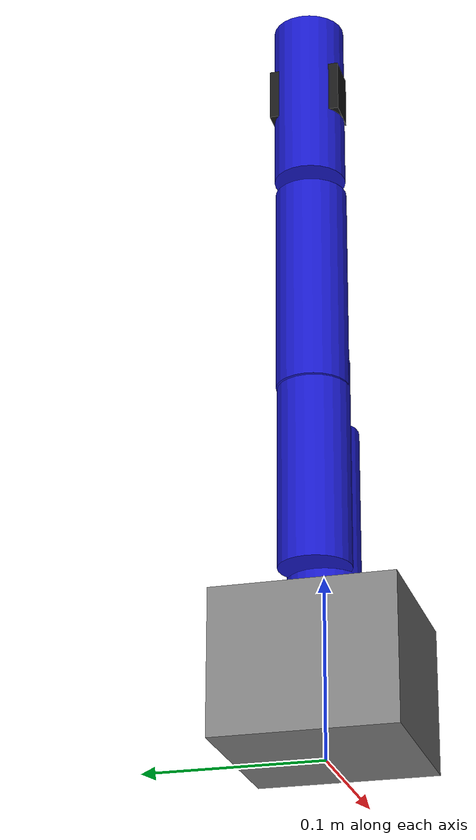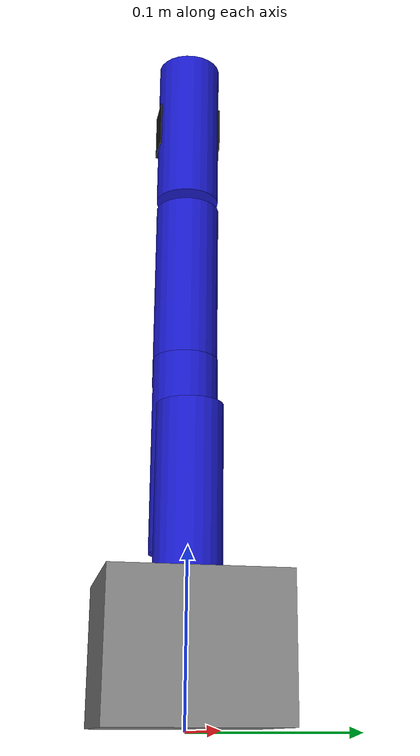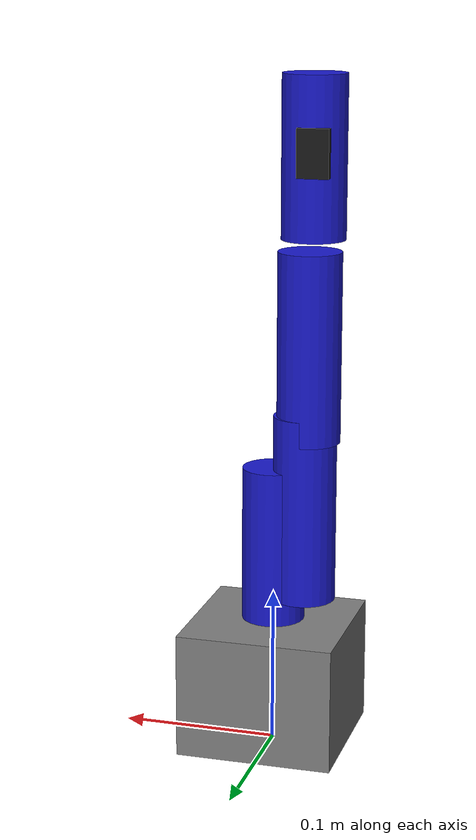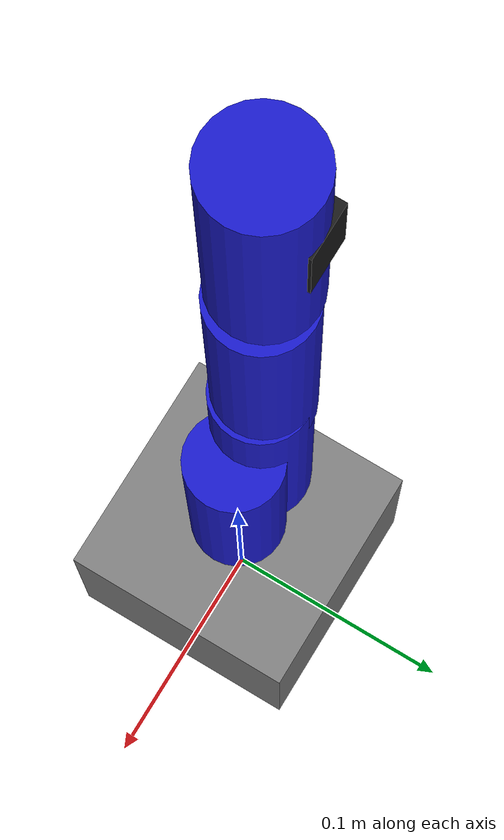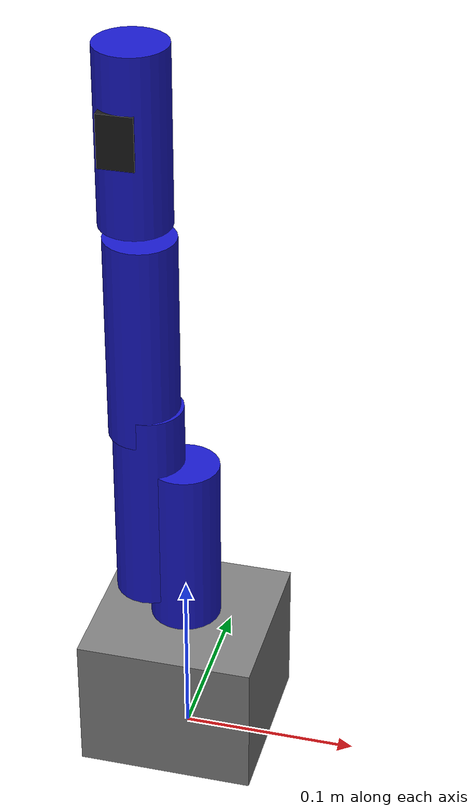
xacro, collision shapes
<?xml version="1.0"?>
<robot name="robotarm" xmlns:xacro="http://www.ros.org/wiki/xacro">

    <!-- materials -->
    <material name="grey"><color rgba="0.5 0.5 0.5 1.0"/></material>
    <material name="blue"><color rgba="0.1 0.1 0.8 1.0"/></material>
    <material name="black"><color rgba="0.1 0.1 0.1 1.0"/></material>

    <xacro:include filename="arm_core.xacro" />
    <xacro:include filename="camera.xacro" />
    <xacro:include filename="arm_control.xacro" />
    <xacro:include filename="arm_gazebo.xacro" />

</robot>

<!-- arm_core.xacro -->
<robot xmlns:xacro="http://www.ros.org/wiki/xacro">

  <!-- properties -->
  <xacro:property name="mesh_prefix" value="package://arm_description/meshes"/>
  <xacro:property name="limit_lower" value="-1.54"/>
  <xacro:property name="limit_upper" value="1.54"/>
  <xacro:property name="limit_effort" value="100"/>
  <xacro:property name="limit_velocity" value="3.14"/>
  <xacro:property name="inertia_val" value="0.0001"/>

  <!-- ==================== LINKS ======================== -->

  <!-- Base Link -->
  <link name="base_link">
    <inertial>
      <origin xyz="0 0 0" rpy="0 0 0"/>
      <mass value="0.5"/>
      <inertia ixx="0.001" ixy="0.0" ixz="0.0" iyy="0.001" iyz="0.0" izz="0.001"/>
    </inertial>
    <visual>
      <geometry><mesh filename="${mesh_prefix}/base_link.stl"/></geometry>
      <material name="grey"/>
    </visual>
    <collision>
      <geometry><box size="0.1 0.1 0.08"/></geometry>
      <origin xyz="0 0 0.04" rpy="0 0 0"/>
    </collision>
  </link>

  <!-- Link 1 -->
  <link name="link_1">
    <inertial>
      <origin xyz="0 0 0" rpy="0 0 0"/>
      <mass value="0.2"/>
      <inertia ixx="${inertia_val}" ixy="0.0" ixz="0.0" iyy="${inertia_val}" iyz="0.0" izz="${inertia_val}"/>
    </inertial>
    <visual>
      <geometry><mesh filename="${mesh_prefix}/link_1.stl"/></geometry>
      <material name="blue"/>
    </visual>
    <collision>
      <geometry><cylinder radius="0.02" length="0.1"/></geometry>
      <origin xyz="0 0 0.05" rpy="0 0 0"/>
    </collision>
  </link>

  <!-- Link 2 -->
  <link name="link_2">
    <inertial>
      <origin xyz="0 0 0" rpy="0 0 0"/>
      <mass value="0.2"/>
      <inertia ixx="${inertia_val}" ixy="0.0" ixz="0.0" iyy="${inertia_val}" iyz="0.0" izz="${inertia_val}"/>
    </inertial>
    <visual>
      <geometry><mesh filename="${mesh_prefix}/link_2.stl"/></geometry>
      <material name="blue"/>
    </visual>
    <collision>
      <geometry><cylinder radius="0.02" length="0.12"/></geometry>
      <origin xyz="0 0 0.06" rpy="0 0 0"/>
    </collision>
  </link>

  <!-- Link 3 -->
  <link name="link_3">
    <inertial>
      <origin xyz="0 0 0" rpy="0 0 0"/>
      <mass value="0.2"/>
      <inertia ixx="${inertia_val}" ixy="0.0" ixz="0.0" iyy="${inertia_val}" iyz="0.0" izz="${inertia_val}"/>
    </inertial>
    <visual>
      <geometry><mesh filename="${mesh_prefix}/link_3.stl"/></geometry>
      <material name="blue"/>
    </visual>
    <collision>
      <geometry><cylinder radius="0.02" length="0.12"/></geometry>
      <origin xyz="0 0 0.06" rpy="0 0 0"/>
    </collision>
  </link>

  <!-- Link 4 -->
  <link name="link_4">
    <inertial>
      <origin xyz="0 0 0" rpy="0 0 0"/>
      <mass value="0.1"/>
      <inertia ixx="${inertia_val}" ixy="0.0" ixz="0.0" iyy="${inertia_val}" iyz="0.0" izz="${inertia_val}"/>
    </inertial>
    <visual>
      <geometry><mesh filename="${mesh_prefix}/link_4.stl"/></geometry>
      <material name="blue"/>
    </visual>
    <collision>
      <geometry><cylinder radius="0.02" length="0.1"/></geometry>
      <origin xyz="0 0 0.05" rpy="0 0 0"/>
    </collision>
  </link>

  <!-- Tooltip Link -->
  <link name="tool_tip">
    <inertial>
      <origin xyz="0 0 0" rpy="0 0 0"/>
      <mass value="0.01"/>
      <inertia ixx="1e-6" ixy="0.0" ixz="0.0" iyy="1e-6" iyz="0.0" izz="1e-6"/>
    </inertial>
  </link>

  <!-- ==================== JOINTS ======================= -->

  <!-- World Joint -->
  <link name="world"/>
  <joint name="world_to_base_joint" type="fixed">
    <parent link="world"/>
    <child link="base_link"/>
    <origin xyz="0 0 0.002" rpy="0 0 0"/>
  </joint>

  <!-- Joint 1 -->
  <joint name="joint_1" type="revolute">
    <parent link="base_link"/>
    <child link="link_1"/>
    <origin xyz="0 0 0.0814" rpy="0 0 0"/>
    <axis xyz="0 0 1"/>
    <limit lower="${limit_lower}" upper="${limit_upper}" effort="${limit_effort}" velocity="${limit_velocity}"/>
    <dynamics damping="0.7" friction="0.1"/>
  </joint>

  <!-- Joint 2 -->
  <joint name="joint_2" type="revolute">
    <parent link="link_1"/>
    <child link="link_2"/>
    <origin xyz="-0.02 0 0.015" rpy="0 0 0"/>
    <axis xyz="0 -1 0"/>
    <limit lower="${limit_lower}" upper="${limit_upper}" effort="${limit_effort}" velocity="${limit_velocity}"/>
    <dynamics damping="0.7" friction="0.1"/>
  </joint>

  <!-- Joint 3 -->
  <joint name="joint_3" type="revolute">
    <parent link="link_2"/>
    <child link="link_3"/>
    <origin xyz="-0.0021 0 0.1035" rpy="0 0 0"/>
    <axis xyz="0 1 0"/>
    <limit lower="${limit_lower}" upper="${limit_upper}" effort="${limit_effort}" velocity="${limit_velocity}"/>
    <dynamics damping="0.7" friction="0.1"/>
  </joint>

  <!-- Joint 4 -->
  <joint name="joint_4" type="revolute">
    <parent link="link_3"/>
    <child link="link_4"/>
    <origin xyz="-0.002 0 0.1275" rpy="0 0 0"/>
    <axis xyz="0 -1 0"/>
    <limit lower="${limit_lower}" upper="${limit_upper}" effort="${limit_effort}" velocity="${limit_velocity}"/>
    <dynamics damping="0.7" friction="0.1"/>
  </joint>

  <!-- Tooltip Joint -->
  <joint name="joint_tool" type="fixed">
    <parent link="link_4"/>
    <child link="tool_tip"/>
    <origin xyz="0.01 0 0.092" rpy="0 0 0"/>
  </joint>

</robot>

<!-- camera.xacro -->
<robot xmlns:xacro="http://www.ros.org/wiki/xacro">

  <link name='camera_link'>
    <visual>
      <geometry><mesh filename="package://arm_description/meshes/camera.stl"/></geometry>
      <material name="black"/>
    </visual>
    <collision>
      <geometry><box size="0.02 0.04 0.03"/></geometry>
    </collision>

    <!-- inertial: 6성분 모두 명시 (비대각은 0으로 안전) -->
    <inertial>
      <origin xyz="0 0 0" rpy="0 0 0"/>
      <mass value="0.05"/>
      <inertia
        ixx="1e-6" ixy="0.0" ixz="0.0"
        iyy="1e-6" iyz="0.0"
        izz="1e-6"/>
    </inertial>
  </link>

  <link name="camera_optical_frame"/>

  <joint name='camera_joint' type='fixed'>
    <parent link='link_4'/>
    <child link='camera_link'/>
    <origin xyz="-0.0035 0 0.054" rpy="0 0 0"/>
  </joint>

  <joint name="camera_optical_joint" type="fixed">
    <parent link="camera_link"/>
    <child link="camera_optical_frame"/>
    <origin rpy="0 0 -1.57079632679" xyz="0 0 0.01"/>
  </joint>

  <gazebo reference="camera_optical_frame">
    <sensor type="camera" name="my_camera">
      <topic>camera/image_raw</topic>
      <update_rate>30.0</update_rate>
      <visualize>true</visualize>
      <always_on>1</always_on>
      <camera name="head">
        <pose>0 0 0 0 0 0</pose>
        <horizontal_fov>1.0466</horizontal_fov>
        <image>
          <width>800</width>
          <height>600</height>
          <format>R8G8B8</format>
        </image>
        <clip>
          <near>0.02</near>
          <far>300</far>
        </clip>
        <distortion>
          <k1>-0.414921465</k1>
          <k2>0.277976117</k2>
          <p1>0.000362302582</p1>
          <p2>-0.000173492775</p2>
          <k3>-0.194112104</k3>
          <center>0.5 0.5</center>
        </distortion>
      </camera>
    </sensor>
  </gazebo>

</robot>
